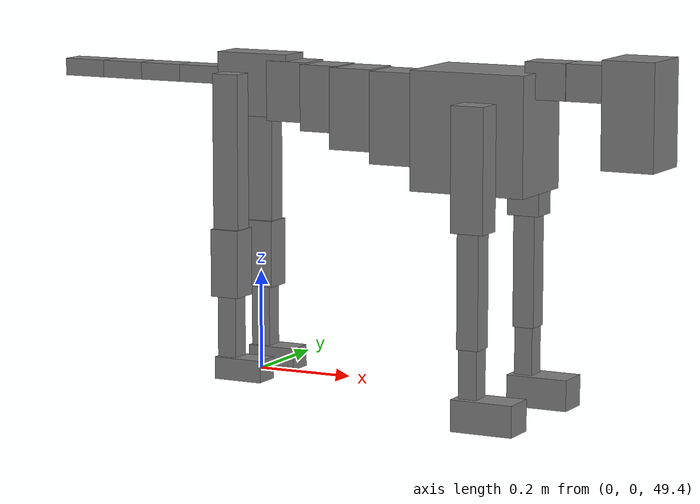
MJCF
<mujoco model="dog">

    <default>
        <joint armature="0.02" stiffness="1" damping="0.2" limited="true"/>
        <geom condim="3" friction="1 0.05 0.05" margin="0.01"/>
        <motor ctrllimited="true" ctrlrange="-1.0 1.0" forcelimited="true" gear="50"/>
    </default>

    <compiler inertiafromgeom="true" angle="radian"/>

    <option timestep="0.016" iterations="50" tolerance="1e-10" solver="Newton" jacobian="dense" cone="pyramidal"/>

    <size nconmax="20000" njmax="60000" nstack="5000000"/>
    <visual>
        <map force="0.1" zfar="30"/>
        <rgba haze="0.15 0.25 0.35 1"/>
        <quality shadowsize="2048"/>
        <global offwidth="800" offheight="800"/>
    </visual>

    <asset>
        <texture type="skybox" builtin="gradient" rgb1="0.3 0.5 0.7" rgb2="0 0 0" width="512" height="512"/>
        <texture name="texplane" type="2d" builtin="checker" rgb1=".2 .3 .4" rgb2=".1 0.15 0.2" width="512" height="512"
                 mark="cross" markrgb=".8 .8 .8"/>
        <texture name="texgeom" type="cube" builtin="flat" mark="cross" width="127" height="1278" rgb1="0.8 0.6 0.4"
                 rgb2="0.8 0.6 0.4" markrgb="1 1 1" random="0.01"/>

        <material name="matplane" reflectance="0.3" texture="texplane" texrepeat="1 1" texuniform="true"/>
        <material name="matgeom" texture="texgeom" texuniform="true" rgba="0.8 0.6 .4 1"/>
    </asset>

    <worldbody>
        <geom name="floor" pos="0 0 0" size="0 0 .25" type="plane" material="matplane" condim="3"/>

        <light directional="false" diffuse=".2 .2 .2" specular="0 0 0" pos="0 0 5" dir="0 0 -1" castshadow="false"/>
        <light mode="targetbodycom" target="torso" directional="false" diffuse=".8 .8 .8" specular="0.3 0.3 0.3"
               pos="0 0 4.0" dir="0 0 -1"/>

        <body name="root" pos="0 0 50">
            <freejoint name="root_1"/>
            <geom type="box" pos="0 0 -0.02" size="0.0774  0.0358  0.063" density="2030"/>

            <body name="spine1" pos="0.054 0 0">
                <joint name="spine1_y" axis="0 1 0" range="0 0.7" limited="true"/>
                <geom type="box" pos="0.02375 0 -0.03" size="0.04375  0.0375  0.05985" density="2030"/>

                <body name="spine2" pos="0.0612 0 0">
                    <joint name="spine2_y" axis="0 1 0" range="-0.15 0.15" limited="true"/>
                    <geom type="box" pos="0.03555  0  -0.04" size="0.04055  0.039  0.06615" density="2030"/>

                    <body name="spine3" pos="0.0730 0 0">
                        <joint name="spine3_y" axis="0 1 0" range="-0.15 0.15" limited="true"/>
                        <geom type="box" pos="0.03555  0  -0.057" size="0.04555  0.0445  0.081" density="2030"/>

                        <body name="spine4" pos="0.0780 0 0">
                            <joint name="spine4_y" axis="0 1 0" range="-0.15 0.15" limited="true"/>
                            <geom type="box" pos="0.05265  0  -0.07" size="0.05265  0.045  0.09135" density="2030"/>

                            <body name="torso" pos="0.1082 0 0">
                                <joint name="torso_y" axis="0 1 0" range="-0.15 0.15" limited="true"/>
                                <geom type="box" pos="0.11925  0  -0.085" size="0.11925  0.085  0.11745"
                                      density="2030"/>

                                <body name="neck1" pos="0.2160  0   0.0180">
                                    <joint name="neck1_y" axis="0 1 0" range="-1.2  -1" limited="true"/>
                                    <geom type="box" pos="0.0423  0  0" size="0.0423  0.03  0.036" density="2325"/>

                                    <body name="neck2" pos="0.0853  0  0">
                                        <joint name="neck2_y" axis="0 1 0" range="0.1  0" limited="true"/>
                                        <geom type="box" pos="0.0423  0  0" size="0.0423  0.03  0.036" density="2325"/>

                                        <body name="head" pos="0.0853  0  0">
                                            <joint name="head_y" axis="0 1 0" range="-0.3  -0.2" limited="true"/>
                                            <geom type="box" pos="0.0531  0  -0.055" size="0.0531  0.06  0.1044"
                                                  density="4030"/>

                                        </body>
                                    </body>
                                </body>

                                <body name="front_shoulder" pos="0.156  0   -0.0480">
                                    <joint name="front_shoulder_y" axis="0 1 0" range="-1 1.5" limited="true"/>
                                    <geom type="box" pos="0 0.13 -0.0954" size="0.0337  0.0288  0.1220" density="1158"/>
                                    <geom type="box" pos="0 -0.13 -0.0954" size="0.0337  0.0288  0.1220"
                                          density="1158"/>

                                    <body name="front_elbow" pos="0  0  -0.1908">
                                        <joint name="front_elbow_y" axis="0 1 0" range="-2 0" limited="true"/>
                                        <geom type="box" pos="0 0.13 -0.1254" size="0.0223  0.0228  0.1254"
                                              density="1081"/>
                                        <geom type="box" pos="0 -0.13 -0.1254" size="0.0223  0.0228  0.1254"
                                              density="1081"/>

                                        <body name="front_wrist" pos="0  0  -0.2508">
                                            <joint name="front_wrist_y" axis="0 1 0" range="-0.2 0" limited="true"/>
                                            <geom type="box" pos="0 0.13 -0.0553" size="0.0188  0.0209  0.0684"
                                                  density="1664"/>
                                            <geom type="box" pos="0 -0.13 -0.0553" size="0.0188  0.0209  0.0684"
                                                  density="1664"/>

                                            <body name="front_finger_end" pos="0  0  -0.1105">
                                                <joint name="front_finger_y" axis="0 1 0" range="-0.4 1"
                                                       limited="true"/>
                                                <geom type="box" pos="0.0350  0.13  -0.0162"
                                                      size="0.0641  0.0350  0.0312" density="1515"/>
                                                <geom type="box" pos="0.0350  -0.13  -0.0162"
                                                      size="0.0641  0.0350  0.0312" density="1515"/>

                                            </body>

                                        </body>
                                    </body>
                                </body>

                            </body>
                        </body>
                    </body>
                </body>
            </body>

            <body name="back_hip" pos="-0.03 0 -0.018">
                <joint name="back_hip_y" axis="0 1 0" range="-1.5 0.3" limited="true"/>
                <geom type="box" pos="0 0.07 -0.1520" size="0.0279  0.0219  0.1748" density="1154"/>
                <geom type="box" pos="0 -0.07 -0.1520" size="0.0279  0.0219  0.1748" density="1154"/>

                <body name="back_knee" pos="0  0  -0.3040">
                    <joint name="back_knee_y" axis="0 1 0" range="0 2.8" limited="true"/>
                    <geom type="box" pos="0 0.07 -0.0524" size="0.0301  0.0296  0.0680" density="1227"/>
                    <geom type="box" pos="0 -0.07 -0.0524" size="0.0301  0.0296  0.0680" density="1227"/>

                    <body name="back_ankle" pos="0  0  -0.1048">
                        <joint name="back_ankle_y" axis="0 1 0" range="-2.2 0" limited="true"/>
                        <geom type="box" pos="0 0.07 -0.0767" size="0.0200  0.0200  0.0880" density="1284"/>
                        <geom type="box" pos="0 -0.07 -0.0767" size="0.0200  0.0200  0.0880" density="1284"/>

                        <body name="back_toe_end" pos="0  0  -0.1534">
                            <joint name="back_toe_y" axis="0 1 0" range="-0.4 1" limited="true"/>
                            <geom type="box" pos="0.0281  0.07  -0.0073" size="0.0515  0.0281  0.0223" density="1515"/>
                            <geom type="box" pos="0.0281  -0.07  -0.0073" size="0.0515  0.0281  0.0223" density="1515"/>

                        </body>
                    </body>
                </body>
            </body>

            <body name="tail1" pos="-0.074 0 -0.006">
                <joint name="tail1_y" axis="0 1 0" range="-0.2 0.2" limited="true"/>
                <geom type="box" pos="-0.0536  0  0" size="0.045  0.025  0.0175" density="1587"/>

                <body name="tail2" pos="-0.09 0 0">
                    <joint name="tail2_y" axis="0 1 0" range="-0.2 0.2" limited="true"/>
                    <geom type="box" pos="-0.0536  0  0" size="0.045  0.025  0.0175" density="1587"/>

                    <body name="tail3" pos="-0.09 0 0">
                        <joint name="tail3_y" axis="0 1 0" range="-0.2 0.2" limited="true"/>
                        <geom type="box" pos="-0.0536  0  0" size="0.045  0.025  0.0175" density="1587"/>

                        <body name="tail4" pos="-0.09 0 0">
                            <joint name="tail4_y" axis="0 1 0" range="-0.2 0.2" limited="true"/>
                            <geom type="box" pos="-0.0536  0  0" size="0.045  0.025  0.0175" density="1587"/>

                        </body>
                    </body>
                </body>
            </body>
        </body>
    </worldbody>

    <actuator>
        <motor joint="spine1_y" forcerange="-150 150     "/>
        <motor joint="spine2_y" forcerange="-150 150     "/>
        <motor joint="spine3_y" forcerange="-150 150     "/>
        <motor joint="spine4_y" forcerange="-150 150     "/>
        <motor joint="torso_y" forcerange="-150 150     "/>
        <motor joint="neck1_y" forcerange="-100 100       "/>
        <motor joint="neck2_y" forcerange="-100 100       "/>
        <motor joint="head_y" forcerange="-150 150       "/>
        <motor joint="front_shoulder_y" forcerange="-174.28 117.62"/>
        <motor joint="front_elbow_y" forcerange="-123.14 142.71"/>
        <motor joint="front_wrist_y" forcerange="-58.31 109.10"/>
        <motor joint="front_finger_y" forcerange="-63.54 82.89"/>
        <motor joint="back_hip_y" forcerange="-245.45 246.38"/>
        <motor joint="back_knee_y" forcerange="-353.63 277.62"/>
        <motor joint="back_angle_y" forcerange="-130.36 89.44"/>
        <motor joint="back_toe_y" forcerange="-70.49 74.06"/>
        <motor joint="tail1_y" forcerange="-50 50     "/>
        <motor joint="tail2_y" forcerange="-50 50     "/>
        <motor joint="tail3_y" forcerange="-50 50     "/>
        <motor joint="tail4_y" forcerange="-50 50     "/>
    </actuator>
</mujoco>
